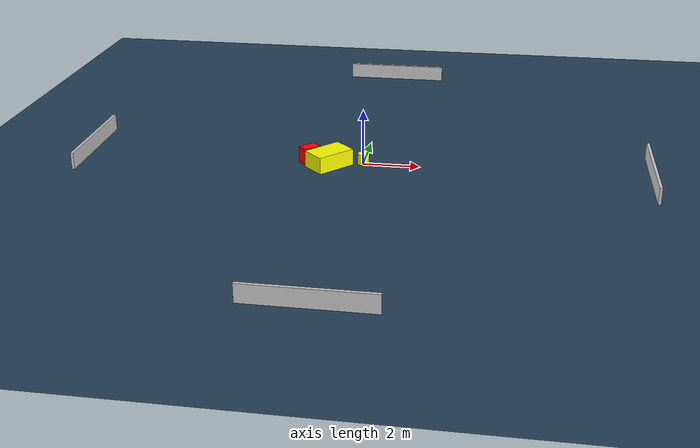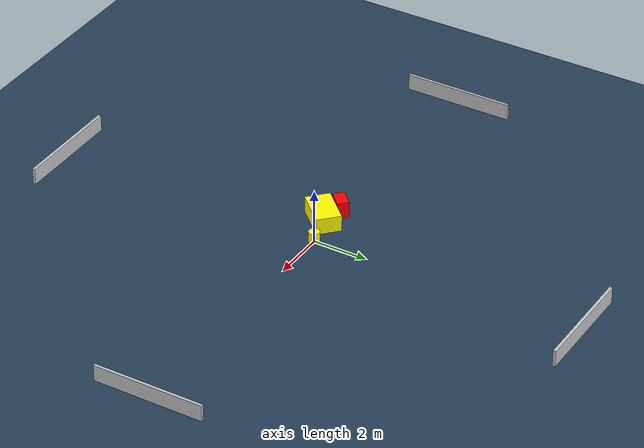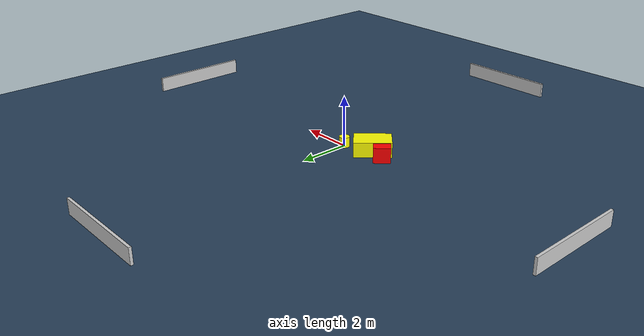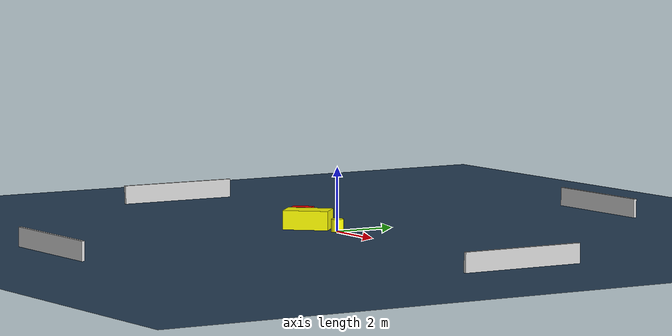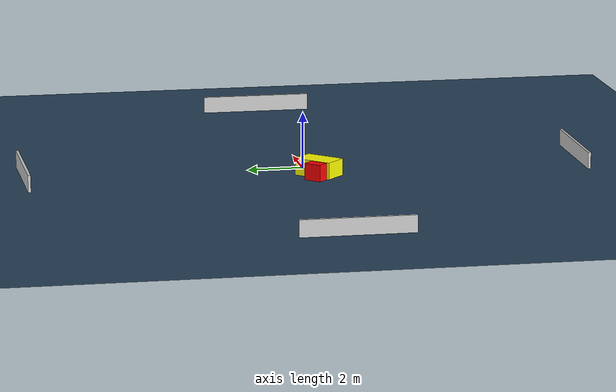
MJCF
<?xml version="1.0" ?>
<mujoco model="generated_environment">
  <option timestep="0.01" integrator="RK4" cone="elliptic"/>
  <default>
    <geom density="1"/>
  </default>
  <asset>
    <texture builtin="gradient" height="3072" name="skybox" rgb1="0.3 0.5 0.7" rgb2="0 0 0" type="skybox" width="512"/>
    <texture builtin="checker" height="300" name="groundplane" rgb1="0.2 0.3 0.4" rgb2="0.1 0.2 0.3" type="2d" width="300"/>
    <material name="groundplane" reflectance="0.2" texrepeat="5 5" texture="groundplane"/>
  </asset>
  <worldbody>
    <light dir="0 0 -1" directional="true" pos="0 0 1.5"/>
    <geom condim="3" friction="0.5 0.005 0.001" material="groundplane" name="floor" pos="0 0 0" size="0 0 0.05" type="plane"/>
    <body name="walls">
      <geom name="wall_1" condim="4" pos="-10.0 0.0 0.3" rgba="0.800000011920929 0.800000011920929 0.800000011920929 1.0" size="0.05 2.0 0.3" type="box"/>
      <geom name="wall_2" condim="4" pos="10.0 0.0 0.3" rgba="0.800000011920929 0.800000011920929 0.800000011920929 1.0" size="0.05 2.0 0.3" type="box"/>
      <geom name="wall_3" condim="4" pos="0.0 -10.0 0.3" rgba="0.800000011920929 0.800000011920929 0.800000011920929 1.0" size="2.0 0.05 0.3" type="box"/>
      <geom name="wall_4" condim="4" pos="0.0 10.0 0.3" rgba="0.800000011920929 0.800000011920929 0.800000011920929 1.0" size="2.0 0.05 0.3" type="box"/>
    </body>
    <body name="robot">
      <joint name="joint_x" type="slide" pos="0 0 0" axis="1 0 0"/>
      <joint name="joint_y" type="slide" pos="0 0 0" axis="0 1 0"/>
      <geom name="robot" type="cylinder" pos="0.0 0.0 0.2" size="0.2 0.2 0.0" mass="5.0" friction="1.0 0.005 0.0001" condim="4" rgba="1.0 1.0 0.0 1.0"/>
    </body>
    <body name="obstacle_1_movable">
      <geom name="obstacle_1_movable" condim="4" pos="-1.1718534043259663 -0.3494252279702842 0.3" euler="0 0 226.61177647694154" friction="0.0 0.005 0.001" rgba="1.0 1.0 0.0 1.0" size="0.7168865369876767 0.4485362150644573 0.3" type="box" mass="0.1"/>
      <joint type="free"/>
    </body>
    <body name="obstacle_2_static">
      <geom name="obstacle_2_static" condim="4" pos="-1.914000035890364 -0.09568272897172377 0.3" euler="0 0 135.19250242521144" friction="0.0 0.005 0.001" rgba="1.0 0.0 0.0 1.0" size="0.2088131590049584 0.32416358465742756 0.3" type="box"/>
    </body>
  </worldbody>
  <actuator>
    <motor name="actuator_x" joint="joint_x" gear="1" ctrlrange="-1 1"/>
    <motor name="actuator_y" joint="joint_y" gear="1" ctrlrange="-1 1"/>
  </actuator>
</mujoco>
